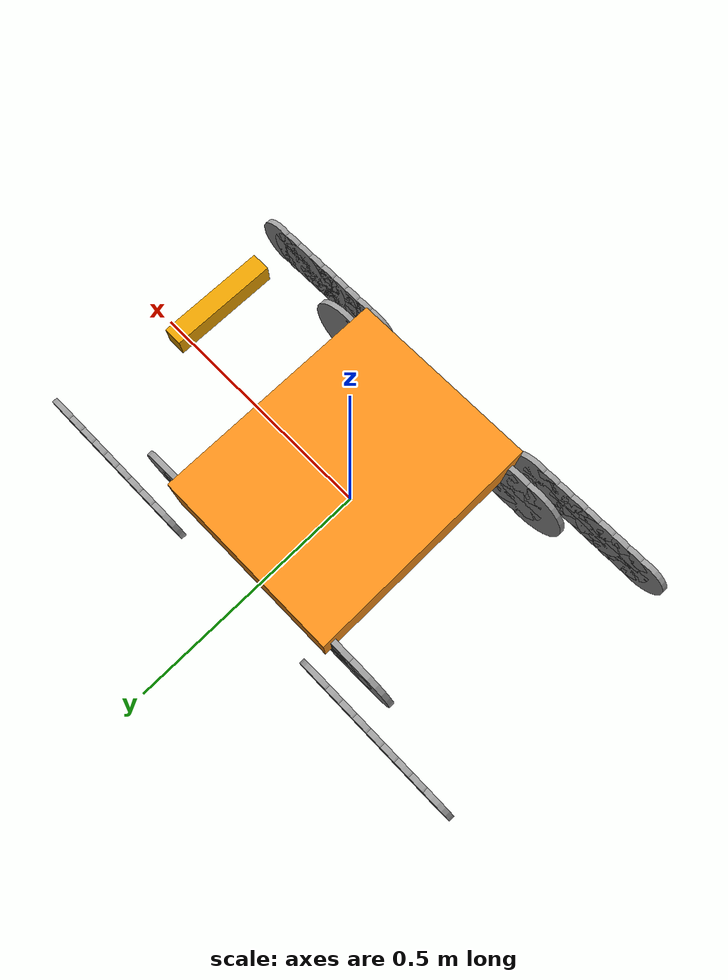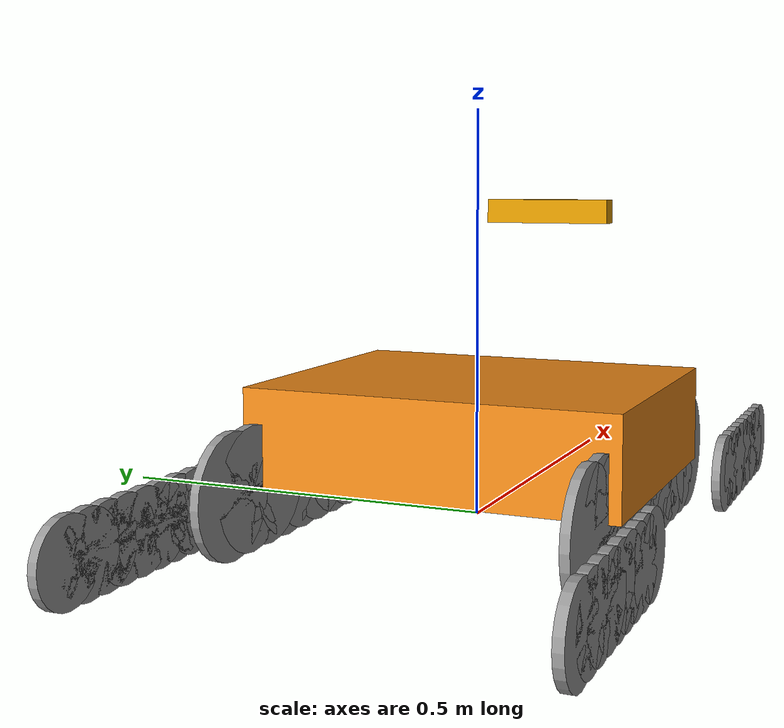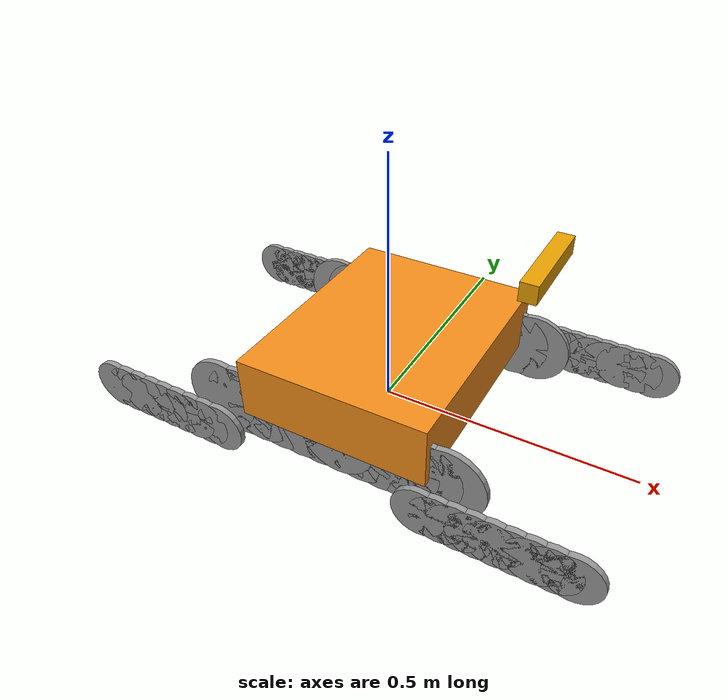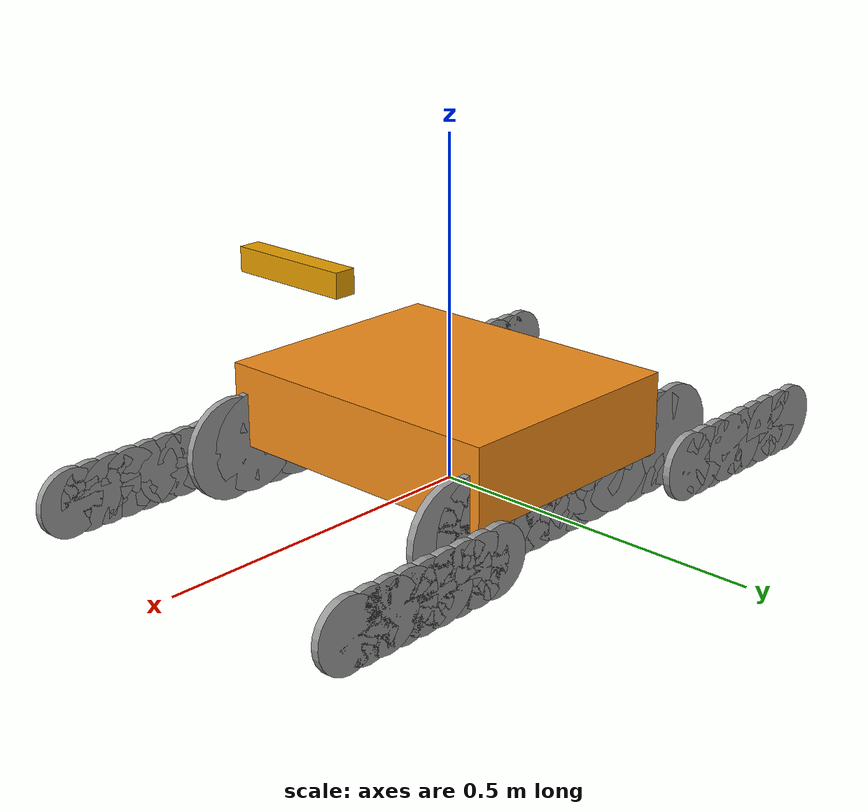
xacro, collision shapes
<?xml version="1.0" encoding="UTF-8"?>
<!-- continuous-continuous Manipulator -->
<robot name="pairbot" xmlns:xacro="http://www.ros.org/wiki/xacro">
    <!-- Constants for robot dimensions -->
    <xacro:property name="PI" value="3.1415926"/>
    <!-- Square dimensions (width x width) of beams  0.1-->
    <xacro:property name="base_mass" value="25.0"/>
    <xacro:property name="base_length" value="0.6"/> <!--was 0.397-->
    <xacro:property name="base_width"  value="0.42"/>  <!--was 0.1789-->
    <xacro:property name="base_height" value="0.18"/>

    <xacro:property name="gear_length" value="0.493"/>
    <xacro:property name="gear_width"  value="0.136"/>
    <xacro:property name="gear_height" value="0.15"/>

    <xacro:property name="base_wheel_mass" value="0.8"/>
    <xacro:property name="base_wheel_radius" value="0.075"/>   <!--was 0.09-->

    <xacro:property name="flipper_mass" value="2.5"/>
    <xacro:property name="flipper_length" value="0.42"/>
    <xacro:property name="flipper_width" value="0.10"/>
    <xacro:property name="flipper_height" value="0.1578"/>

    <xacro:property name="flipper_wheel_mass" value="0.2"/>
    <xacro:property name="flipper_wheel_radius" value="0.05"/>
    <xacro:property name="flipper_wheel_length" value="0.017"/>
    <xacro:property name="flipper_wheel_distance" value="0.032"/>

    <xacro:property name="scale" value="1"/>
    <xacro:property name="prefix" value="pairbot"/>
    <xacro:include filename="$(find pb_description)/urdf/pairbot.gazebo"/>
    <xacro:include filename="$(find pb_description)/urdf/materials.xacro"/>
    <xacro:include filename="$(find zed_sim_package)/urdf/zed_sim.urdf.xacro"/>
    <xacro:include filename="$(find zed_sim_package)/urdf/zed_sim.gazebo.xacro"/>

    <xacro:macro name="collision_macro"
                 params="mesh_name x y z roll pitch yaw scale:=${scale}">
        <collision>
            <origin xyz="${x} ${y} ${z}" rpy="${roll} ${pitch} ${yaw}"/>
            <geometry>
                <mesh filename="package://pb_description/meshes/${mesh_name}" scale="${scale} ${scale} ${scale}"/>
            </geometry>
        </collision>
    </xacro:macro>

    <xacro:macro name="inertial_macro"
                 params="x y z roll pitch yaw mass ixx ixy ixz iyy iyz izz">
        <inertial>
            <origin xyz="${x} ${y} ${z}" rpy="${roll} ${pitch} ${yaw}"/>
            <mass value="${mass}"/>
            <inertia ixx="${mass}" ixy="0" ixz="0" iyy="${mass}" iyz="0" izz="${mass}"/>
        </inertial>
    </xacro:macro>

    <xacro:macro name="visual_macro" params="x y z roll pitch yaw material scale mesh_name">
        <visual>
            <origin xyz="${x} ${y} ${z}" rpy="${roll} ${pitch} ${yaw}"/>
            <geometry>
                <mesh filename="package://pb_description/meshes/${mesh_name}" scale="${scale} ${scale} ${scale}"/>
            </geometry>
            <material name="${material}"/>-->
        </visual>
    </xacro:macro>

    <xacro:macro name="link_macro"
                 params="x y z name_link  mesh_name  mass material scale ixx ixy ixz iyy iyz izz roll:=0 pitch:=0 yaw:=0 ">
        <link name="${name_link}">
            <xacro:visual_macro mesh_name="${mesh_name}" x="${x}" y="${y}" z="${z}" roll="0" pitch="0" yaw="0"
                                material="${material}" scale="${scale}"/>
            <xacro:inertial_macro x="${x}" y="${y}" z="${z}"
                                  roll="${roll}" pitch="${pitch}" yaw="${yaw}" mass="${mass}"
                                  ixx="${ixx}" ixy="${ixy}" ixz="${ixz}" iyy="${iyy}" iyz="${iyz}" izz="${izz}"/>
        </link>
    </xacro:macro>

    <xacro:macro name="joint_macro"
                 params="joint_name type parent child x y z roll pitch yaw axis">
        <joint name="${joint_name}" type="${type}">
            <parent link="${parent}"/>
            <child link="${child}"/>
            <origin xyz="${x} ${y} ${z}" rpy="${roll} ${pitch} ${yaw}"/>
            <axis xyz="${axis}"/>
            <limit lower="${-2*PI}" upper="${2*PI}" effort="1000" velocity="1000"/>
        </joint>

        <transmission name="tran_${joint_name}">
            <type>transmission_interface/SimpleTransmission</type>
            <joint name="${joint_name}">
                <hardwareInterface>hardware_interface/EffortJointInterface</hardwareInterface>
            </joint>
            <actuator name="motor_${joint_name}">
                <hardwareInterface>hardware_interface/EffortJointInterface</hardwareInterface>
                <mechanicalReduction>1</mechanicalReduction>
            </actuator>
        </transmission>
    </xacro:macro>

    <xacro:macro name="wheel"
                 params="mesh_name material name_link x y z roll pitch yaw radius wheel_length mass parent direction:=1">
        <link name="${name_link}">
            <xacro:visual_macro mesh_name="${mesh_name}" x="0" y="0" z="0" roll="0" pitch="0" yaw="0"
                                material="${material}" scale="${scale*2}"/>
            <collision>
                <origin xyz="0 0 0" rpy="${PI/2} 0 0"/>
                <geometry>
                	<cylinder radius="${radius*scale}" length="${0.011*scale}"/>
                </geometry>
            </collision>
            <xacro:inertial_macro x="0" y="0" z="0"
                                  roll="0" pitch="0" yaw="0" mass="${mass}"
                                  ixx="1" ixy="0.0" ixz="0.0" iyy="1" iyz="0.0" izz="1"/>
        </link>
        <joint name="joint_${name_link}" type="continuous">
            <parent link="${parent}"/>
            <child link="${name_link}"/>
            <origin xyz="${x} ${y} ${z}" rpy="${roll} ${pitch} ${yaw}"/>
            <axis xyz="0 ${direction} 0"/>
            <limit velocity="20" effort="100"/>
        </joint>

        <transmission name="tran_joint_${name_link}">
            <type>transmission_interface/SimpleTransmission</type>
            <joint name="joint_${name_link}">
                <hardwareInterface>hardware_interface/VelocityJointInterface</hardwareInterface>
            </joint>
            <actuator name="motor_joint_${name_link}">
                <hardwareInterface>hardware_interface/VelocityJointInterface</hardwareInterface>
                <mechanicalReduction>1</mechanicalReduction>
            </actuator>
        </transmission>

    </xacro:macro>
    <xacro:macro name="basewheel"
                 params="mesh_name material name_link x y z roll pitch yaw radius wheel_length mass parent direction:=1">
        <link name="${name_link}">
            <xacro:visual_macro mesh_name="${mesh_name}" x="0" y="0" z="0" roll="0" pitch="0" yaw="0"
                                material="${material}" scale="${scale*3}"/>
            <collision>
                <origin xyz="0 0 0" rpy="${PI/2} 0 0"/>
                <geometry>
                	<cylinder radius="${radius*scale}" length="${0.011*scale}"/>
                </geometry>
            </collision>
            <xacro:inertial_macro x="0" y="0" z="0"
                                  roll="0" pitch="0" yaw="0" mass="${mass}"
                                  ixx="1" ixy="0.0" ixz="0.0" iyy="1" iyz="0.0" izz="1"/>
        </link>
        <joint name="joint_${name_link}" type="continuous">
            <parent link="${parent}"/>
            <child link="${name_link}"/>
            <origin xyz="${x} ${y} ${z}" rpy="${roll} ${pitch} ${yaw}"/>
            <axis xyz="0 ${direction} 0"/>
            <limit velocity="20" effort="100"/>
        </joint>

        <transmission name="tran_joint_${name_link}">
            <type>transmission_interface/SimpleTransmission</type>
            <joint name="joint_${name_link}">
                <hardwareInterface>hardware_interface/VelocityJointInterface</hardwareInterface>
            </joint>
            <actuator name="motor_joint_${name_link}">
                <hardwareInterface>hardware_interface/VelocityJointInterface</hardwareInterface>
                <mechanicalReduction>1</mechanicalReduction>
            </actuator>
        </transmission>

    </xacro:macro>

    <xacro:macro name="wheel_box"
                 params="mesh_name material name_link x y z roll pitch yaw radius wheel_length mass parent direction:=1">
        <link name="${name_link}">
            <visual>
                <origin xyz="0 0 0" rpy="${PI/2} 0 0"/>
                <geometry>
                    <box size="${radius*scale*1.9} ${0.003*scale} ${0.011*scale}"/>
                </geometry>
                <material name="${material}"/>-->
            </visual>

            <collision>
                <origin xyz="0 0 0" rpy="${PI/2} 0 0"/>
                <geometry>
                	<box size="${radius*scale*1.9} ${0.003*scale} ${0.011*scale}"/>
                </geometry>
            </collision>
            <xacro:inertial_macro x="0" y="0" z="0"
                                  roll="0" pitch="0" yaw="0" mass="${mass}"
                                  ixx="1" ixy="0.0" ixz="0.0" iyy="1" iyz="0.0" izz="1"/>
        </link>
        <joint name="joint_${name_link}" type="continuous">
            <parent link="${parent}"/>
            <child link="${name_link}"/>
            <origin xyz="${x} ${y} ${z}" rpy="${roll} ${pitch} ${yaw}"/>
            <axis xyz="0 ${direction} 0"/>
            <limit velocity="20" effort="100"/>
        </joint>

        <transmission name="tran_joint_${name_link}">
            <type>transmission_interface/SimpleTransmission</type>
            <joint name="joint_${name_link}">
                <hardwareInterface>hardware_interface/VelocityJointInterface</hardwareInterface>
            </joint>
            <actuator name="motor_joint_${name_link}">
                <hardwareInterface>hardware_interface/VelocityJointInterface</hardwareInterface>
                <mechanicalReduction>1</mechanicalReduction>
            </actuator>
        </transmission>

    </xacro:macro>

    <!-- start##In order to improve the performance, I use simple box instead of mesh -->
    <xacro:macro name="visual_base_box" params="x y z roll pitch yaw material scale mesh_name">
        <visual>
            <origin xyz="${x+0.01} ${y} ${z+0.11}" rpy="${roll} ${pitch} ${yaw}"/>
            <geometry>
                <box size="${scale*0.37} ${0.46*scale} ${0.12*scale}"/>
            </geometry>
            <material name="${material}"/>-->
        </visual>
    </xacro:macro>

    <xacro:macro name="collision_base_box"
                 params="mesh_name x y z roll pitch yaw scale:=${scale}">
        <collision>
            <origin xyz="${x+0.01} ${y} ${z+0.11}" rpy="${roll} ${pitch} ${yaw}"/>
            <geometry>
                <box size="${scale*0.37} ${0.46*scale} ${0.12*scale}"/>
            </geometry>
        </collision>
    </xacro:macro>
    <!-- end##In order to improve the performance, I use simple box instead of mesh -->

    <link name="base_link">
        <xacro:visual_macro mesh_name="mainbody.stl" x="0" y="0" z="0" roll="0" pitch="0" yaw="0"
                                material="orange" scale="${scale}"/>
        <xacro:visual_macro mesh_name="left_gears.stl" x="0" y="${base_width/2}" z="0.02" roll="0" pitch="0" yaw="0"
                                material="grey" scale="${scale}"/>
        <xacro:visual_macro mesh_name="right_gears.stl" x="0" y="${-1*base_width/2}" z="0.02" roll="0" pitch="0" yaw="0"
                                material="grey" scale="${scale}"/>

        <xacro:collision_base_box mesh_name="mainbody.stl" x="0" y="0" z="0" roll="0" pitch="0" yaw="0"
                                   scale="${scale}"/>

        <xacro:inertial_macro x="0" y="0" z="0"
                                  roll="0" pitch="0" yaw="0" mass="${base_mass}"
                                  ixx="1" ixy="0" ixz="0" iyy="1" iyz="0" izz="1"/>
    </link>

    <xacro:link_macro name_link="camera_stick_link" x="0" y="0" z="0" roll="0" pitch="0" yaw="0" mesh_name="camera_body.stl"  mass="5" material="grey"
                      scale="${scale}" ixx="1" ixy="0.0" ixz="0.0" iyy="1" iyz="0.000" izz="1"/>

    <joint name="joint_camera_stick" type="fixed">
        <parent link="base_link"/>
        <child link="camera_stick_link"/>
        <origin xyz="${base_length/2-0.03} 0 ${base_height-0.05}" rpy="0 0 0"/>
        <axis xyz="0 0 0"/>
    </joint>

    <xacro:macro name="right_base_wheel" params="index">
      <xacro:basewheel name_link="right_base_wheel_${index}" mesh_name="right_flipper_tire.stl" material="grey"
                 x="${base_length/2-0.001-0.075-(index-1)*(0.042)}"
                 y="${-1*base_width/2}"
                 z="${base_wheel_radius-0.02}" roll="0" pitch="0" yaw="0"
                 radius="${base_wheel_radius}" wheel_length="${gear_width-0.005}"
                 mass="${base_wheel_mass}"
                 parent="base_link" />
    </xacro:macro>

    <xacro:macro name="left_base_wheel" params="index">
      <xacro:basewheel name_link="left_base_wheel_${index}" mesh_name="left_flipper_tire.stl" material="grey"
                 x="${base_length/2-0.001-0.075-(index-1)*(0.042)}"
                 y="${base_width/2}"
                 z="${base_wheel_radius-0.02}" roll="0" pitch="0" yaw="0"
                 radius="${base_wheel_radius}" wheel_length="${gear_width-0.005}"
                 mass="${base_wheel_mass}"
                 parent="base_link" />
    </xacro:macro>

    <xacro:right_base_wheel index="1" />
    <xacro:right_base_wheel index="2" />
    <xacro:right_base_wheel index="3" />
    <xacro:right_base_wheel index="4" />
    <xacro:right_base_wheel index="5" />
    <xacro:right_base_wheel index="6" />
    <xacro:right_base_wheel index="7" />
    <xacro:right_base_wheel index="8" />
    <xacro:right_base_wheel index="9" />
    <xacro:right_base_wheel index="10" />
    <xacro:right_base_wheel index="11" />
    <xacro:right_base_wheel index="12" />

    <xacro:left_base_wheel index="1" />
    <xacro:left_base_wheel index="2" />
    <xacro:left_base_wheel index="3" />
    <xacro:left_base_wheel index="4" />
    <xacro:left_base_wheel index="5" />
    <xacro:left_base_wheel index="6" />
    <xacro:left_base_wheel index="7" />
    <xacro:left_base_wheel index="8" />
    <xacro:left_base_wheel index="9" />
    <xacro:left_base_wheel index="10" />
    <xacro:left_base_wheel index="11" />
    <xacro:left_base_wheel index="12" />

<!--for flipper: x: left/right y: up/down-->
    <xacro:macro name="right_flipper_asm"
        params="loc jx jy jz roll pitch yaw direction:=1">

        <xacro:link_macro name_link="${loc}_flipper" x="0" y="0" z="0" roll="0" pitch="0" yaw="0" mesh_name="right_front_flipper.stl"  mass="${flipper_mass}" material="grey"
                      scale="${scale}" ixx="1" ixy="0.0" ixz="0.0" iyy="1" iyz="0.000" izz="1"/>

        <xacro:joint_macro joint_name="joint_${loc}_flipper" type="continuous" parent="base_link"
                            child="${loc}_flipper"
                            x="${jx}" y="${jy}" z="${jz}"
                            roll="${roll}" pitch="${pitch}" yaw="${yaw}" axis="0 -1 0" />

        <xacro:wheel name_link="${loc}_flipper_wheel" mesh_name="right_flipper_tire.stl" material="grey"
                 x="${(flipper_length-flipper_wheel_radius-flipper_height/2)*scale}"
                 y="-0.02" z="${0.032-flipper_height/2}"
                 roll="0" pitch="0" yaw="0" direction="${direction}"
                 radius="${flipper_wheel_radius}" wheel_length="${flipper_width-0.02}" mass="${flipper_wheel_mass}" parent="${loc}_flipper"/>

        <xacro:macro name="right_flipper_middle_wheel"
             params="loc index direction">
            <xacro:wheel name_link="${loc}_flipper_middle_wheel_${index}" mesh_name="right_flipper_tire.stl" material="grey"
                 x="${(flipper_length-flipper_wheel_radius-index*flipper_wheel_distance-flipper_height/2)*scale}"
                 y="-0.02"
                 z="${0.032-flipper_height/2}"
                 roll="0" pitch="0" yaw="0" direction="${direction}"
                 radius="${flipper_wheel_radius}" wheel_length="${flipper_width-0.02}" mass="${flipper_wheel_mass}" parent="${loc}_flipper"/>
        </xacro:macro>
        <xacro:right_flipper_middle_wheel loc="${loc}" index="1" direction="${direction}"/>
        <xacro:right_flipper_middle_wheel loc="${loc}" index="2" direction="${direction}"/>
        <xacro:right_flipper_middle_wheel loc="${loc}" index="3" direction="${direction}"/>
        <xacro:right_flipper_middle_wheel loc="${loc}" index="4" direction="${direction}"/>
        <xacro:right_flipper_middle_wheel loc="${loc}" index="5" direction="${direction}"/>
        <xacro:right_flipper_middle_wheel loc="${loc}" index="6" direction="${direction}"/>
        <xacro:right_flipper_middle_wheel loc="${loc}" index="7" direction="${direction}"/>
        <xacro:right_flipper_middle_wheel loc="${loc}" index="8" direction="${direction}"/>
    </xacro:macro>

    <xacro:right_flipper_asm loc="right_front"
        jx="${(gear_length/2-flipper_height/2)*scale}"
        jy="${-1*(base_width/2+gear_width-flipper_width)*scale}"
        jz="${flipper_height/2}"
        roll="0" pitch="0" yaw="0"/>

    <xacro:right_flipper_asm loc="left_rear"
        jx="${(-1)*(gear_length/2-flipper_height/2)*scale}"
        jy="${(base_width/2+gear_width-flipper_width)*scale}"
        jz="${flipper_height/2}"
        direction="-1"
        roll="0" pitch="0" yaw="${PI}"/>

    <!-- left flipper -->
    <xacro:macro name="left_flipper_asm" params="loc jx jy jz roll pitch yaw direction:=1">
        <xacro:link_macro name_link="${loc}_flipper" x="0" y="0" z="0" roll="0" pitch="0" yaw="0" mesh_name="left_front_flipper.stl" mass="${flipper_mass}" material="grey"
                          scale="${scale}" ixx="1" ixy="0.0" ixz="0.0" iyy="1" iyz="0.000" izz="1"/>

        <xacro:joint_macro joint_name="joint_${loc}_flipper" type="continuous" parent="base_link" child="${loc}_flipper"
                            x="${jx}" y="${jy}" z="${jz}" roll="${roll}" pitch="${pitch}" yaw="${yaw}" axis="0 -1 0"/>

        <xacro:wheel name_link="${loc}_flipper_wheel"  mesh_name="left_flipper_tire.stl" material="grey"
                     x="${(flipper_length-flipper_wheel_radius-flipper_height/2)*scale}"
                     y="0.02"
                     z="${0.032*scale-flipper_height/2}"
                     roll="0" pitch="0" yaw="0" direction="${direction}"
                     radius="${flipper_wheel_radius}" wheel_length="${flipper_width-0.02}" mass="${flipper_wheel_mass}" parent="${loc}_flipper"/>

        <xacro:macro name="left_flipper_middle_wheel"
             params="loc index direction">
            <xacro:wheel name_link="${loc}_flipper_middle_wheel_${index}" mesh_name="left_flipper_tire.stl" material="grey"
                     x="${(flipper_length-flipper_wheel_radius-index*flipper_wheel_distance-flipper_height/2)*scale}"
                     y="0.02"
                     z="${0.032*scale-flipper_height/2}"
                     roll="0" pitch="0" yaw="0" direction="${direction}"
                     radius="${flipper_wheel_radius}" wheel_length="${flipper_width-0.02}" mass="${flipper_wheel_mass}" parent="${loc}_flipper"/>
        </xacro:macro>
        <xacro:left_flipper_middle_wheel loc="${loc}" index="1" direction="${direction}"/>
        <xacro:left_flipper_middle_wheel loc="${loc}" index="2" direction="${direction}"/>
        <xacro:left_flipper_middle_wheel loc="${loc}" index="3" direction="${direction}"/>
        <xacro:left_flipper_middle_wheel loc="${loc}" index="4" direction="${direction}"/>
        <xacro:left_flipper_middle_wheel loc="${loc}" index="5" direction="${direction}"/>
        <xacro:left_flipper_middle_wheel loc="${loc}" index="6" direction="${direction}"/>
        <xacro:left_flipper_middle_wheel loc="${loc}" index="7" direction="${direction}"/>
        <xacro:left_flipper_middle_wheel loc="${loc}" index="8" direction="${direction}"/>
    </xacro:macro>

    <xacro:left_flipper_asm loc="left_front"
        jx="${(gear_length/2-flipper_height/2)*scale}"
        jy="${(base_width/2+gear_width-flipper_width)*scale}"
        jz="${flipper_height/2}"
        roll="0" pitch="0" yaw="0"/>

    <xacro:left_flipper_asm loc="right_rear"
        jx="${(-1)*(gear_length/2-flipper_height/2)*scale}"
        jy="${(-1)*(base_width/2+gear_width-flipper_width)*scale}"
        jz="${flipper_height/2}"
        direction="-1"
        roll="0" pitch="0" yaw="${PI}"/>

    <!-- z is 39 cm = 0.15m+0.24m -->
    <xacro:joint_macro joint_name="scan_joint" type="continuous" parent="camera_stick_link"
                            child="zed_sim"
                            x="0.01" y="0" z="0.24"
                            roll="0" pitch="0" yaw="0" axis="0 1 0" />

    <joint name="sonar_joint" type="fixed">
        <origin xyz="${base_length/2-0.01} 0 ${base_height-0.04}" rpy="0 1.57 0"/>
        <parent link="base_link"/>
        <child link="sonar_link"/>
    </joint>

    <link name="sonar_link">
        <inertial>
            <mass value="0.001"/>
            <origin xyz="0 0 0.0" rpy="0 0 0 "/>
            <inertia ixx="0.000000017" ixy="0" ixz="0" iyy="0.000000017" iyz="0" izz="0.000000017"/>
        </inertial>
        <visual>
            <origin xyz="0 0 0.0" rpy="0 0 0"/>
            <geometry>
                <box size="0.005 0.03 0.02"/>
            </geometry>
        </visual>
    </link>

</robot>

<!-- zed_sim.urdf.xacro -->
<robot name="pairbot" xmlns:xacro="http://www.ros.org/wiki/xacro">
  <link name="zed_sim">
    <pose> 0 0 0 0 0 0 </pose>
      <inertial>
        <mass value="0.159" />
        <inertia ixx="1.0" ixy="0.0" ixz="0.0" iyy="1.0" iyz="0.0" izz="1.0" />
      </inertial>
      <collision name="collision">
        <geometry>
	        <box size="0.03 0.175 0.033" />
	      </geometry>
      </collision>
      <visual name="visual">
        <pose>-0.02 -0.0875 -0.0125 1.5707963 0 1.5707963 </pose>
        <geometry>
          <mesh>
            <uri>package://zed_sim_package/mesh/zed_body.stl</uri>
            <scale> 0.001 0.001 0.001</scale>
	        </mesh>
        </geometry>
      </visual>
  </link>
</robot>
